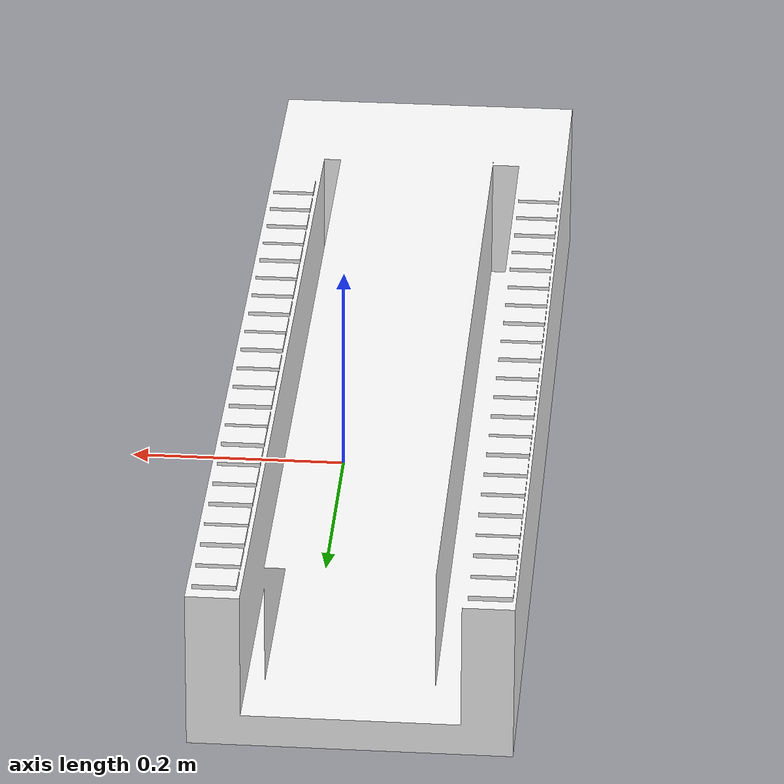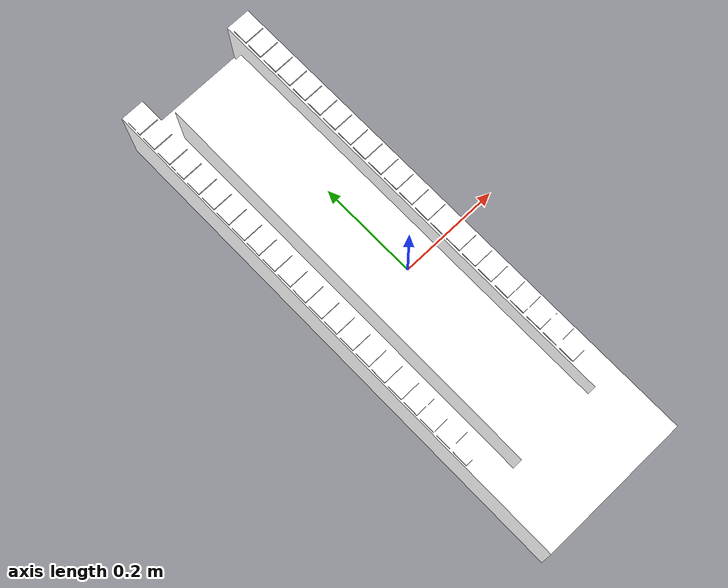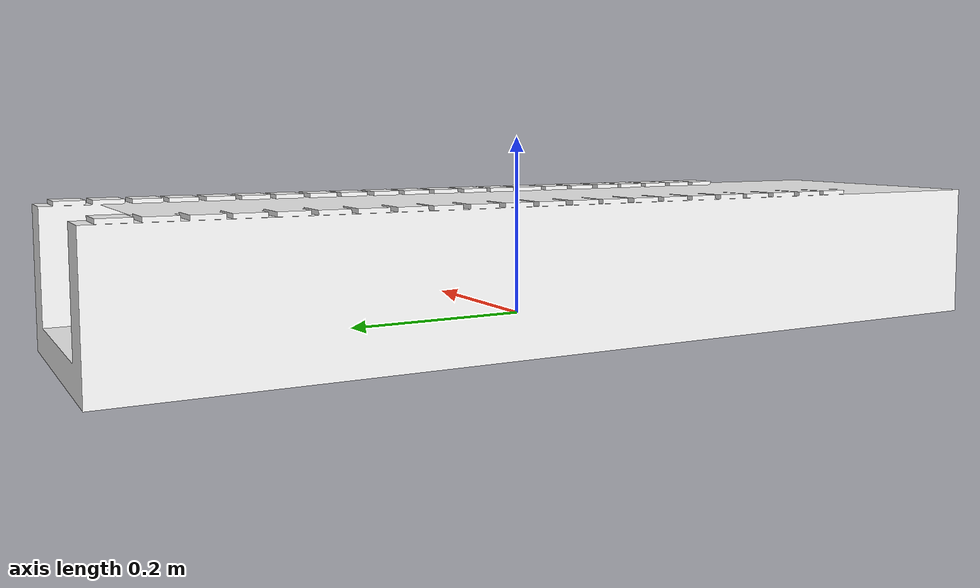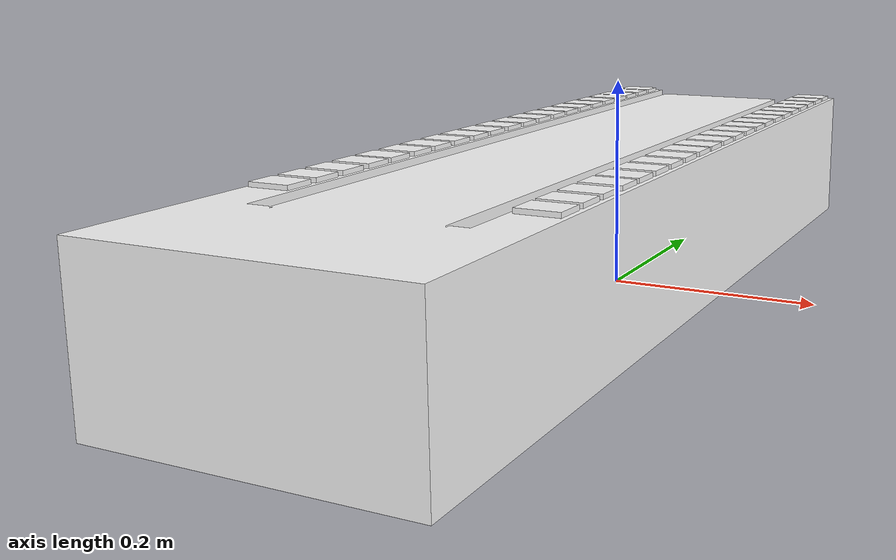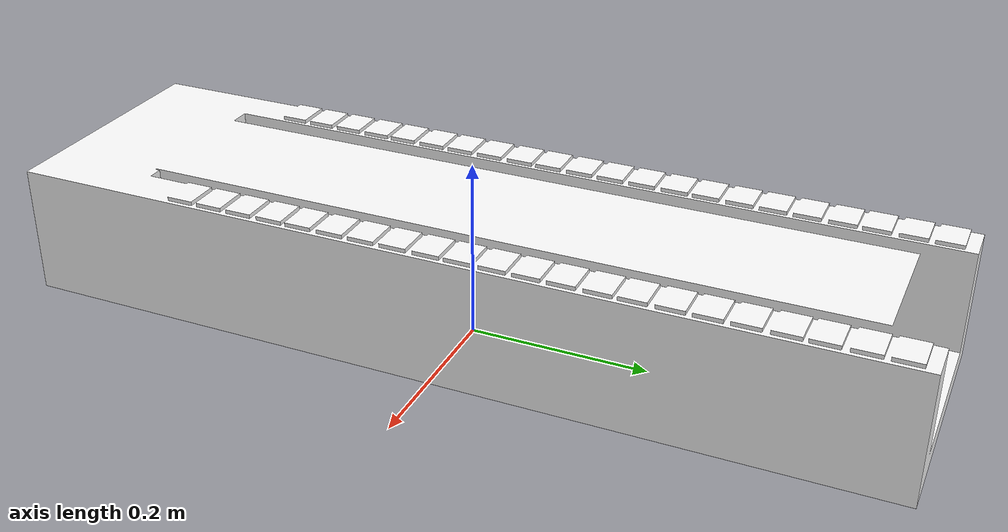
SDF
<sdf version="1.6">
  <model name="lamp_320891">
    <static>true</static>
    <link name="link">
      <collision name="collision">
        <geometry>
          <box>
            <size>1 1 1</size>
          </box>
        </geometry>
      </collision>
      <visual name="lamp">
        <geometry>
          <mesh>
            <uri>model://lamp_320891/meshes/lamp.dae</uri>
            <scale>0.005 0.005 0.005</scale>
          </mesh>
        </geometry>
        <material>
          <diffuse>1.0 1.0 1.0</diffuse>
        </material>
      </visual>
    </link>
  </model>
</sdf>
